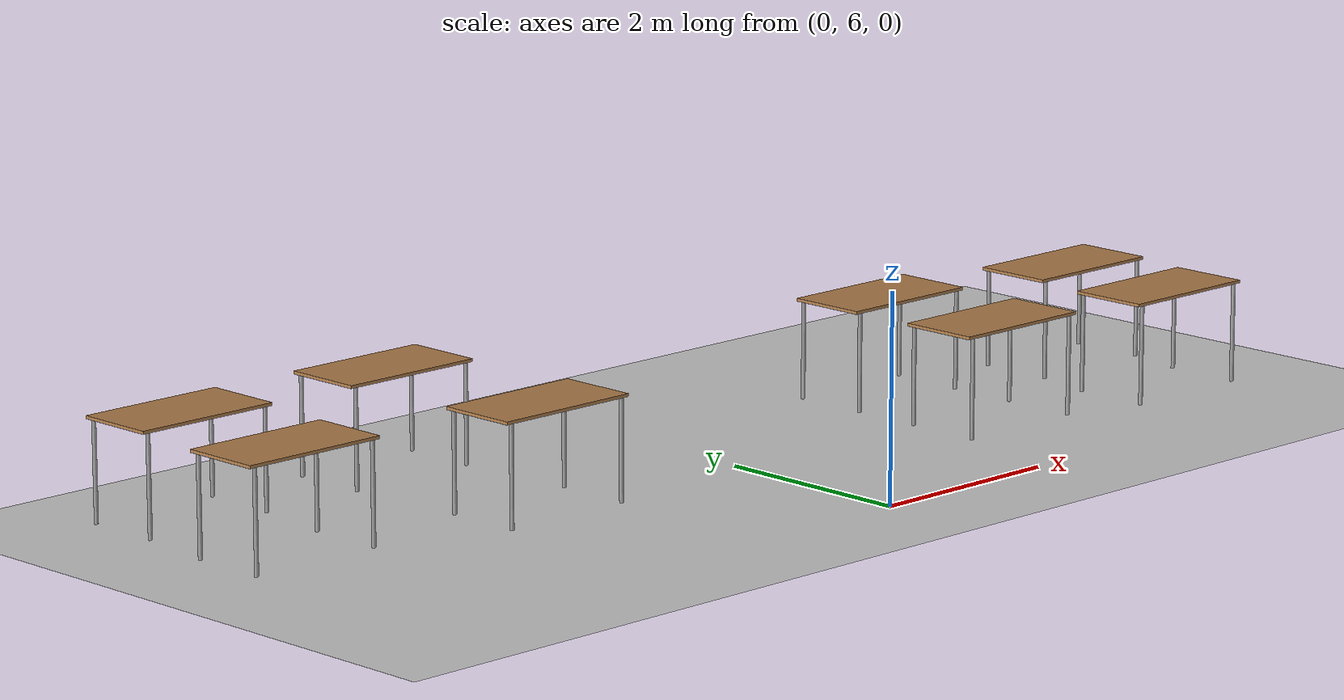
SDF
<sdf version="1.7">
 <world name="default">
  <model name="ground_plane">
   <static>1</static>
   <link name="link">
    <collision name="collision">
     <geometry><plane><normal>0 0 1</normal><size>100 100</size></plane></geometry>
     <surface>
      <contact><collide_bitmask>65535</collide_bitmask></contact>
      <friction><ode><mu>100</mu><mu2>50</mu2></ode></friction>
     </surface>
    </collision>
    <visual name="visual">
     <cast_shadows>0</cast_shadows>
     <geometry><plane><normal>0 0 1</normal><size>100 100</size></plane></geometry>
     <material>
      <script><uri>file://media/materials/scripts/gazebo.material</uri><name>Gazebo/Grey</name></script>
     </material>
    </visual>
   </link>
  </model>
  <model name="table_clone_23">
   <static>1</static>
   <link name="link">
    <collision name="surface">
     <pose>0 0 1 0 -0 0</pose>
     <geometry><box><size>1.5 0.8 0.03</size></box></geometry>
     <surface><friction><ode><mu>0.6</mu><mu2>0.6</mu2></ode></friction></surface>
    </collision>
    <visual name="visual1">
     <pose>0 0 1 0 -0 0</pose>
     <geometry><box><size>1.5 0.8 0.03</size></box></geometry>
     <material>
      <script><uri>file://media/materials/scripts/gazebo.material</uri><name>Gazebo/Wood</name></script>
     </material>
    </visual>
    <collision name="front_left_leg">
     <pose>0.68 0.38 0.5 0 -0 0</pose>
     <geometry><cylinder><radius>0.02</radius><length>1</length></cylinder></geometry>
    </collision>
    <visual name="front_left_leg">
     <pose>0.68 0.38 0.5 0 -0 0</pose>
     <geometry><cylinder><radius>0.02</radius><length>1</length></cylinder></geometry>
     <material>
      <script><uri>file://media/materials/scripts/gazebo.material</uri><name>Gazebo/Grey</name></script>
     </material>
    </visual>
    <collision name="front_right_leg">
     <pose>0.68 -0.38 0.5 0 -0 0</pose>
     <geometry><cylinder><radius>0.02</radius><length>1</length></cylinder></geometry>
    </collision>
    <visual name="front_right_leg">
     <pose>0.68 -0.38 0.5 0 -0 0</pose>
     <geometry><cylinder><radius>0.02</radius><length>1</length></cylinder></geometry>
     <material>
      <script><uri>file://media/materials/scripts/gazebo.material</uri><name>Gazebo/Grey</name></script>
     </material>
    </visual>
    <collision name="back_right_leg">
     <pose>-0.68 -0.38 0.5 0 -0 0</pose>
     <geometry><cylinder><radius>0.02</radius><length>1</length></cylinder></geometry>
    </collision>
    <visual name="back_right_leg">
     <pose>-0.68 -0.38 0.5 0 -0 0</pose>
     <geometry><cylinder><radius>0.02</radius><length>1</length></cylinder></geometry>
     <material>
      <script><uri>file://media/materials/scripts/gazebo.material</uri><name>Gazebo/Grey</name></script>
     </material>
    </visual>
    <collision name="back_left_leg">
     <pose>-0.68 0.38 0.5 0 -0 0</pose>
     <geometry><cylinder><radius>0.02</radius><length>1</length></cylinder></geometry>
    </collision>
    <visual name="back_left_leg">
     <pose>-0.68 0.38 0.5 0 -0 0</pose>
     <geometry><cylinder><radius>0.02</radius><length>1</length></cylinder></geometry>
     <material>
      <script><uri>file://media/materials/scripts/gazebo.material</uri><name>Gazebo/Grey</name></script>
     </material>
    </visual>
   </link>
   <pose>3 7.52178 0 0 -0 0</pose>
  </model>
  <model name="table_clone_24">
   <static>1</static>
   <link name="link">
    <collision name="surface">
     <pose>0 0 1 0 -0 0</pose>
     <geometry><box><size>1.5 0.8 0.03</size></box></geometry>
     <surface><friction><ode><mu>0.6</mu><mu2>0.6</mu2></ode></friction></surface>
    </collision>
    <visual name="visual1">
     <pose>0 0 1 0 -0 0</pose>
     <geometry><box><size>1.5 0.8 0.03</size></box></geometry>
     <material>
      <script><uri>file://media/materials/scripts/gazebo.material</uri><name>Gazebo/Wood</name></script>
     </material>
    </visual>
    <collision name="front_left_leg">
     <pose>0.68 0.38 0.5 0 -0 0</pose>
     <geometry><cylinder><radius>0.02</radius><length>1</length></cylinder></geometry>
    </collision>
    <visual name="front_left_leg">
     <pose>0.68 0.38 0.5 0 -0 0</pose>
     <geometry><cylinder><radius>0.02</radius><length>1</length></cylinder></geometry>
     <material>
      <script><uri>file://media/materials/scripts/gazebo.material</uri><name>Gazebo/Grey</name></script>
     </material>
    </visual>
    <collision name="front_right_leg">
     <pose>0.68 -0.38 0.5 0 -0 0</pose>
     <geometry><cylinder><radius>0.02</radius><length>1</length></cylinder></geometry>
    </collision>
    <visual name="front_right_leg">
     <pose>0.68 -0.38 0.5 0 -0 0</pose>
     <geometry><cylinder><radius>0.02</radius><length>1</length></cylinder></geometry>
     <material>
      <script><uri>file://media/materials/scripts/gazebo.material</uri><name>Gazebo/Grey</name></script>
     </material>
    </visual>
    <collision name="back_right_leg">
     <pose>-0.68 -0.38 0.5 0 -0 0</pose>
     <geometry><cylinder><radius>0.02</radius><length>1</length></cylinder></geometry>
    </collision>
    <visual name="back_right_leg">
     <pose>-0.68 -0.38 0.5 0 -0 0</pose>
     <geometry><cylinder><radius>0.02</radius><length>1</length></cylinder></geometry>
     <material>
      <script><uri>file://media/materials/scripts/gazebo.material</uri><name>Gazebo/Grey</name></script>
     </material>
    </visual>
    <collision name="back_left_leg">
     <pose>-0.68 0.38 0.5 0 -0 0</pose>
     <geometry><cylinder><radius>0.02</radius><length>1</length></cylinder></geometry>
    </collision>
    <visual name="back_left_leg">
     <pose>-0.68 0.38 0.5 0 -0 0</pose>
     <geometry><cylinder><radius>0.02</radius><length>1</length></cylinder></geometry>
     <material>
      <script><uri>file://media/materials/scripts/gazebo.material</uri><name>Gazebo/Grey</name></script>
     </material>
    </visual>
   </link>
   <pose>3 9 0 0 -0 0</pose>
  </model>
  <model name="table_clone_26">
   <static>1</static>
   <link name="link">
    <collision name="surface">
     <pose>0 0 1 0 -0 0</pose>
     <geometry><box><size>1.5 0.8 0.03</size></box></geometry>
     <surface><friction><ode><mu>0.6</mu><mu2>0.6</mu2></ode></friction></surface>
    </collision>
    <visual name="visual1">
     <pose>0 0 1 0 -0 0</pose>
     <geometry><box><size>1.5 0.8 0.03</size></box></geometry>
     <material>
      <script><uri>file://media/materials/scripts/gazebo.material</uri><name>Gazebo/Wood</name></script>
     </material>
    </visual>
    <collision name="front_left_leg">
     <pose>0.68 0.38 0.5 0 -0 0</pose>
     <geometry><cylinder><radius>0.02</radius><length>1</length></cylinder></geometry>
    </collision>
    <visual name="front_left_leg">
     <pose>0.68 0.38 0.5 0 -0 0</pose>
     <geometry><cylinder><radius>0.02</radius><length>1</length></cylinder></geometry>
     <material>
      <script><uri>file://media/materials/scripts/gazebo.material</uri><name>Gazebo/Grey</name></script>
     </material>
    </visual>
    <collision name="front_right_leg">
     <pose>0.68 -0.38 0.5 0 -0 0</pose>
     <geometry><cylinder><radius>0.02</radius><length>1</length></cylinder></geometry>
    </collision>
    <visual name="front_right_leg">
     <pose>0.68 -0.38 0.5 0 -0 0</pose>
     <geometry><cylinder><radius>0.02</radius><length>1</length></cylinder></geometry>
     <material>
      <script><uri>file://media/materials/scripts/gazebo.material</uri><name>Gazebo/Grey</name></script>
     </material>
    </visual>
    <collision name="back_right_leg">
     <pose>-0.68 -0.38 0.5 0 -0 0</pose>
     <geometry><cylinder><radius>0.02</radius><length>1</length></cylinder></geometry>
    </collision>
    <visual name="back_right_leg">
     <pose>-0.68 -0.38 0.5 0 -0 0</pose>
     <geometry><cylinder><radius>0.02</radius><length>1</length></cylinder></geometry>
     <material>
      <script><uri>file://media/materials/scripts/gazebo.material</uri><name>Gazebo/Grey</name></script>
     </material>
    </visual>
    <collision name="back_left_leg">
     <pose>-0.68 0.38 0.5 0 -0 0</pose>
     <geometry><cylinder><radius>0.02</radius><length>1</length></cylinder></geometry>
    </collision>
    <visual name="back_left_leg">
     <pose>-0.68 0.38 0.5 0 -0 0</pose>
     <geometry><cylinder><radius>0.02</radius><length>1</length></cylinder></geometry>
     <material>
      <script><uri>file://media/materials/scripts/gazebo.material</uri><name>Gazebo/Grey</name></script>
     </material>
    </visual>
   </link>
   <pose>5.17069 7.2994 0 0 -0 0</pose>
  </model>
  <model name="table_clone_27">
   <static>1</static>
   <link name="link">
    <collision name="surface">
     <pose>0 0 1 0 -0 0</pose>
     <geometry><box><size>1.5 0.8 0.03</size></box></geometry>
     <surface><friction><ode><mu>0.6</mu><mu2>0.6</mu2></ode></friction></surface>
    </collision>
    <visual name="visual1">
     <pose>0 0 1 0 -0 0</pose>
     <geometry><box><size>1.5 0.8 0.03</size></box></geometry>
     <material>
      <script><uri>file://media/materials/scripts/gazebo.material</uri><name>Gazebo/Wood</name></script>
     </material>
    </visual>
    <collision name="front_left_leg">
     <pose>0.68 0.38 0.5 0 -0 0</pose>
     <geometry><cylinder><radius>0.02</radius><length>1</length></cylinder></geometry>
    </collision>
    <visual name="front_left_leg">
     <pose>0.68 0.38 0.5 0 -0 0</pose>
     <geometry><cylinder><radius>0.02</radius><length>1</length></cylinder></geometry>
     <material>
      <script><uri>file://media/materials/scripts/gazebo.material</uri><name>Gazebo/Grey</name></script>
     </material>
    </visual>
    <collision name="front_right_leg">
     <pose>0.68 -0.38 0.5 0 -0 0</pose>
     <geometry><cylinder><radius>0.02</radius><length>1</length></cylinder></geometry>
    </collision>
    <visual name="front_right_leg">
     <pose>0.68 -0.38 0.5 0 -0 0</pose>
     <geometry><cylinder><radius>0.02</radius><length>1</length></cylinder></geometry>
     <material>
      <script><uri>file://media/materials/scripts/gazebo.material</uri><name>Gazebo/Grey</name></script>
     </material>
    </visual>
    <collision name="back_right_leg">
     <pose>-0.68 -0.38 0.5 0 -0 0</pose>
     <geometry><cylinder><radius>0.02</radius><length>1</length></cylinder></geometry>
    </collision>
    <visual name="back_right_leg">
     <pose>-0.68 -0.38 0.5 0 -0 0</pose>
     <geometry><cylinder><radius>0.02</radius><length>1</length></cylinder></geometry>
     <material>
      <script><uri>file://media/materials/scripts/gazebo.material</uri><name>Gazebo/Grey</name></script>
     </material>
    </visual>
    <collision name="back_left_leg">
     <pose>-0.68 0.38 0.5 0 -0 0</pose>
     <geometry><cylinder><radius>0.02</radius><length>1</length></cylinder></geometry>
    </collision>
    <visual name="back_left_leg">
     <pose>-0.68 0.38 0.5 0 -0 0</pose>
     <geometry><cylinder><radius>0.02</radius><length>1</length></cylinder></geometry>
     <material>
      <script><uri>file://media/materials/scripts/gazebo.material</uri><name>Gazebo/Grey</name></script>
     </material>
    </visual>
   </link>
   <pose>5.2933 8.66356 0 0 -0 0</pose>
  </model>
  <model name="table_clone_29">
   <static>1</static>
   <link name="link">
    <collision name="surface">
     <pose>0 0 1 0 -0 0</pose>
     <geometry><box><size>1.5 0.8 0.03</size></box></geometry>
     <surface><friction><ode><mu>0.6</mu><mu2>0.6</mu2></ode></friction></surface>
    </collision>
    <visual name="visual1">
     <pose>0 0 1 0 -0 0</pose>
     <geometry><box><size>1.5 0.8 0.03</size></box></geometry>
     <material>
      <script><uri>file://media/materials/scripts/gazebo.material</uri><name>Gazebo/Wood</name></script>
     </material>
    </visual>
    <collision name="front_left_leg">
     <pose>0.68 0.38 0.5 0 -0 0</pose>
     <geometry><cylinder><radius>0.02</radius><length>1</length></cylinder></geometry>
    </collision>
    <visual name="front_left_leg">
     <pose>0.68 0.38 0.5 0 -0 0</pose>
     <geometry><cylinder><radius>0.02</radius><length>1</length></cylinder></geometry>
     <material>
      <script><uri>file://media/materials/scripts/gazebo.material</uri><name>Gazebo/Grey</name></script>
     </material>
    </visual>
    <collision name="front_right_leg">
     <pose>0.68 -0.38 0.5 0 -0 0</pose>
     <geometry><cylinder><radius>0.02</radius><length>1</length></cylinder></geometry>
    </collision>
    <visual name="front_right_leg">
     <pose>0.68 -0.38 0.5 0 -0 0</pose>
     <geometry><cylinder><radius>0.02</radius><length>1</length></cylinder></geometry>
     <material>
      <script><uri>file://media/materials/scripts/gazebo.material</uri><name>Gazebo/Grey</name></script>
     </material>
    </visual>
    <collision name="back_right_leg">
     <pose>-0.68 -0.38 0.5 0 -0 0</pose>
     <geometry><cylinder><radius>0.02</radius><length>1</length></cylinder></geometry>
    </collision>
    <visual name="back_right_leg">
     <pose>-0.68 -0.38 0.5 0 -0 0</pose>
     <geometry><cylinder><radius>0.02</radius><length>1</length></cylinder></geometry>
     <material>
      <script><uri>file://media/materials/scripts/gazebo.material</uri><name>Gazebo/Grey</name></script>
     </material>
    </visual>
    <collision name="back_left_leg">
     <pose>-0.68 0.38 0.5 0 -0 0</pose>
     <geometry><cylinder><radius>0.02</radius><length>1</length></cylinder></geometry>
    </collision>
    <visual name="back_left_leg">
     <pose>-0.68 0.38 0.5 0 -0 0</pose>
     <geometry><cylinder><radius>0.02</radius><length>1</length></cylinder></geometry>
     <material>
      <script><uri>file://media/materials/scripts/gazebo.material</uri><name>Gazebo/Grey</name></script>
     </material>
    </visual>
   </link>
   <pose>-4.95316 8.62599 0 0 -0 0</pose>
  </model>
  <model name="table_clone_30">
   <static>1</static>
   <link name="link">
    <collision name="surface">
     <pose>0 0 1 0 -0 0</pose>
     <geometry><box><size>1.5 0.8 0.03</size></box></geometry>
     <surface><friction><ode><mu>0.6</mu><mu2>0.6</mu2></ode></friction></surface>
    </collision>
    <visual name="visual1">
     <pose>0 0 1 0 -0 0</pose>
     <geometry><box><size>1.5 0.8 0.03</size></box></geometry>
     <material>
      <script><uri>file://media/materials/scripts/gazebo.material</uri><name>Gazebo/Wood</name></script>
     </material>
    </visual>
    <collision name="front_left_leg">
     <pose>0.68 0.38 0.5 0 -0 0</pose>
     <geometry><cylinder><radius>0.02</radius><length>1</length></cylinder></geometry>
    </collision>
    <visual name="front_left_leg">
     <pose>0.68 0.38 0.5 0 -0 0</pose>
     <geometry><cylinder><radius>0.02</radius><length>1</length></cylinder></geometry>
     <material>
      <script><uri>file://media/materials/scripts/gazebo.material</uri><name>Gazebo/Grey</name></script>
     </material>
    </visual>
    <collision name="front_right_leg">
     <pose>0.68 -0.38 0.5 0 -0 0</pose>
     <geometry><cylinder><radius>0.02</radius><length>1</length></cylinder></geometry>
    </collision>
    <visual name="front_right_leg">
     <pose>0.68 -0.38 0.5 0 -0 0</pose>
     <geometry><cylinder><radius>0.02</radius><length>1</length></cylinder></geometry>
     <material>
      <script><uri>file://media/materials/scripts/gazebo.material</uri><name>Gazebo/Grey</name></script>
     </material>
    </visual>
    <collision name="back_right_leg">
     <pose>-0.68 -0.38 0.5 0 -0 0</pose>
     <geometry><cylinder><radius>0.02</radius><length>1</length></cylinder></geometry>
    </collision>
    <visual name="back_right_leg">
     <pose>-0.68 -0.38 0.5 0 -0 0</pose>
     <geometry><cylinder><radius>0.02</radius><length>1</length></cylinder></geometry>
     <material>
      <script><uri>file://media/materials/scripts/gazebo.material</uri><name>Gazebo/Grey</name></script>
     </material>
    </visual>
    <collision name="back_left_leg">
     <pose>-0.68 0.38 0.5 0 -0 0</pose>
     <geometry><cylinder><radius>0.02</radius><length>1</length></cylinder></geometry>
    </collision>
    <visual name="back_left_leg">
     <pose>-0.68 0.38 0.5 0 -0 0</pose>
     <geometry><cylinder><radius>0.02</radius><length>1</length></cylinder></geometry>
     <material>
      <script><uri>file://media/materials/scripts/gazebo.material</uri><name>Gazebo/Grey</name></script>
     </material>
    </visual>
   </link>
   <pose>-4.84701 10.2053 0 0 -0 0</pose>
  </model>
  <model name="table_clone_32">
   <static>1</static>
   <link name="link">
    <collision name="surface">
     <pose>0 0 1 0 -0 0</pose>
     <geometry><box><size>1.5 0.8 0.03</size></box></geometry>
     <surface><friction><ode><mu>0.6</mu><mu2>0.6</mu2></ode></friction></surface>
    </collision>
    <visual name="visual1">
     <pose>0 0 1 0 -0 0</pose>
     <geometry><box><size>1.5 0.8 0.03</size></box></geometry>
     <material>
      <script><uri>file://media/materials/scripts/gazebo.material</uri><name>Gazebo/Wood</name></script>
     </material>
    </visual>
    <collision name="front_left_leg">
     <pose>0.68 0.38 0.5 0 -0 0</pose>
     <geometry><cylinder><radius>0.02</radius><length>1</length></cylinder></geometry>
    </collision>
    <visual name="front_left_leg">
     <pose>0.68 0.38 0.5 0 -0 0</pose>
     <geometry><cylinder><radius>0.02</radius><length>1</length></cylinder></geometry>
     <material>
      <script><uri>file://media/materials/scripts/gazebo.material</uri><name>Gazebo/Grey</name></script>
     </material>
    </visual>
    <collision name="front_right_leg">
     <pose>0.68 -0.38 0.5 0 -0 0</pose>
     <geometry><cylinder><radius>0.02</radius><length>1</length></cylinder></geometry>
    </collision>
    <visual name="front_right_leg">
     <pose>0.68 -0.38 0.5 0 -0 0</pose>
     <geometry><cylinder><radius>0.02</radius><length>1</length></cylinder></geometry>
     <material>
      <script><uri>file://media/materials/scripts/gazebo.material</uri><name>Gazebo/Grey</name></script>
     </material>
    </visual>
    <collision name="back_right_leg">
     <pose>-0.68 -0.38 0.5 0 -0 0</pose>
     <geometry><cylinder><radius>0.02</radius><length>1</length></cylinder></geometry>
    </collision>
    <visual name="back_right_leg">
     <pose>-0.68 -0.38 0.5 0 -0 0</pose>
     <geometry><cylinder><radius>0.02</radius><length>1</length></cylinder></geometry>
     <material>
      <script><uri>file://media/materials/scripts/gazebo.material</uri><name>Gazebo/Grey</name></script>
     </material>
    </visual>
    <collision name="back_left_leg">
     <pose>-0.68 0.38 0.5 0 -0 0</pose>
     <geometry><cylinder><radius>0.02</radius><length>1</length></cylinder></geometry>
    </collision>
    <visual name="back_left_leg">
     <pose>-0.68 0.38 0.5 0 -0 0</pose>
     <geometry><cylinder><radius>0.02</radius><length>1</length></cylinder></geometry>
     <material>
      <script><uri>file://media/materials/scripts/gazebo.material</uri><name>Gazebo/Grey</name></script>
     </material>
    </visual>
   </link>
   <pose>-2.32798 8.19222 0 0 -0 0</pose>
  </model>
  <model name="table_clone_33">
   <static>1</static>
   <link name="link">
    <collision name="surface">
     <pose>0 0 1 0 -0 0</pose>
     <geometry><box><size>1.5 0.8 0.03</size></box></geometry>
     <surface><friction><ode><mu>0.6</mu><mu2>0.6</mu2></ode></friction></surface>
    </collision>
    <visual name="visual1">
     <pose>0 0 1 0 -0 0</pose>
     <geometry><box><size>1.5 0.8 0.03</size></box></geometry>
     <material>
      <script><uri>file://media/materials/scripts/gazebo.material</uri><name>Gazebo/Wood</name></script>
     </material>
    </visual>
    <collision name="front_left_leg">
     <pose>0.68 0.38 0.5 0 -0 0</pose>
     <geometry><cylinder><radius>0.02</radius><length>1</length></cylinder></geometry>
    </collision>
    <visual name="front_left_leg">
     <pose>0.68 0.38 0.5 0 -0 0</pose>
     <geometry><cylinder><radius>0.02</radius><length>1</length></cylinder></geometry>
     <material>
      <script><uri>file://media/materials/scripts/gazebo.material</uri><name>Gazebo/Grey</name></script>
     </material>
    </visual>
    <collision name="front_right_leg">
     <pose>0.68 -0.38 0.5 0 -0 0</pose>
     <geometry><cylinder><radius>0.02</radius><length>1</length></cylinder></geometry>
    </collision>
    <visual name="front_right_leg">
     <pose>0.68 -0.38 0.5 0 -0 0</pose>
     <geometry><cylinder><radius>0.02</radius><length>1</length></cylinder></geometry>
     <material>
      <script><uri>file://media/materials/scripts/gazebo.material</uri><name>Gazebo/Grey</name></script>
     </material>
    </visual>
    <collision name="back_right_leg">
     <pose>-0.68 -0.38 0.5 0 -0 0</pose>
     <geometry><cylinder><radius>0.02</radius><length>1</length></cylinder></geometry>
    </collision>
    <visual name="back_right_leg">
     <pose>-0.68 -0.38 0.5 0 -0 0</pose>
     <geometry><cylinder><radius>0.02</radius><length>1</length></cylinder></geometry>
     <material>
      <script><uri>file://media/materials/scripts/gazebo.material</uri><name>Gazebo/Grey</name></script>
     </material>
    </visual>
    <collision name="back_left_leg">
     <pose>-0.68 0.38 0.5 0 -0 0</pose>
     <geometry><cylinder><radius>0.02</radius><length>1</length></cylinder></geometry>
    </collision>
    <visual name="back_left_leg">
     <pose>-0.68 0.38 0.5 0 -0 0</pose>
     <geometry><cylinder><radius>0.02</radius><length>1</length></cylinder></geometry>
     <material>
      <script><uri>file://media/materials/scripts/gazebo.material</uri><name>Gazebo/Grey</name></script>
     </material>
    </visual>
   </link>
   <pose>-2.42426 10.1764 0 0 -0 0</pose>
  </model>
 </world>
</sdf>
